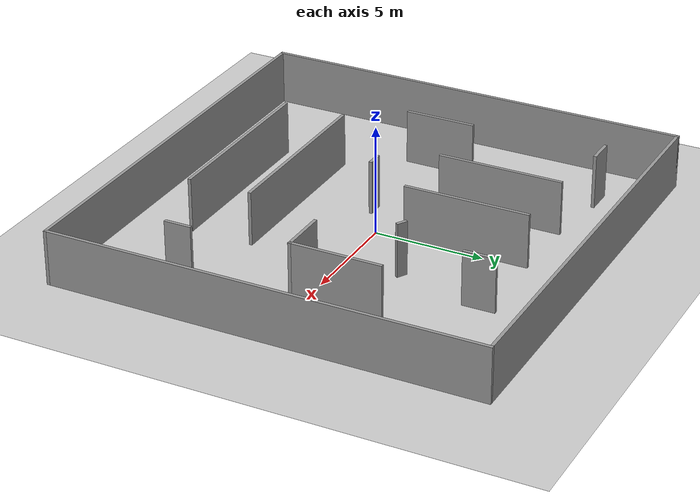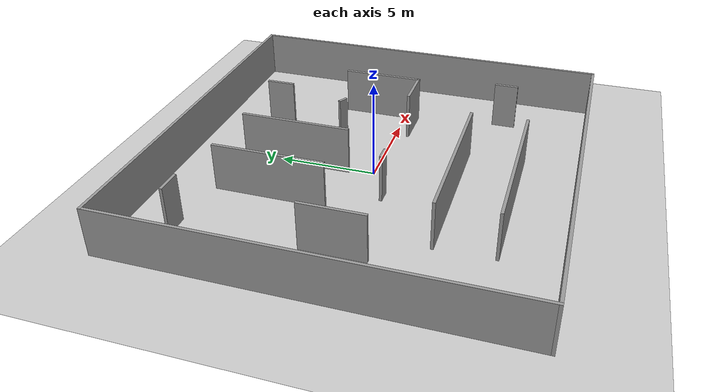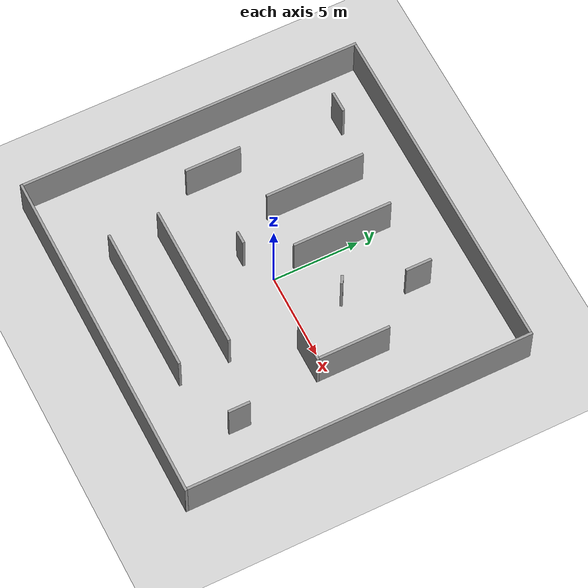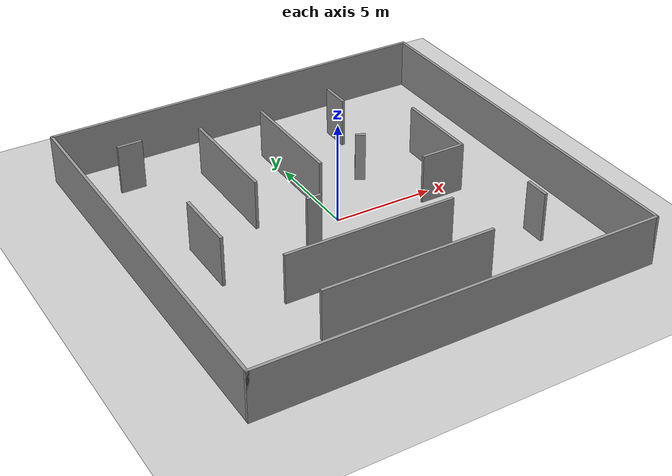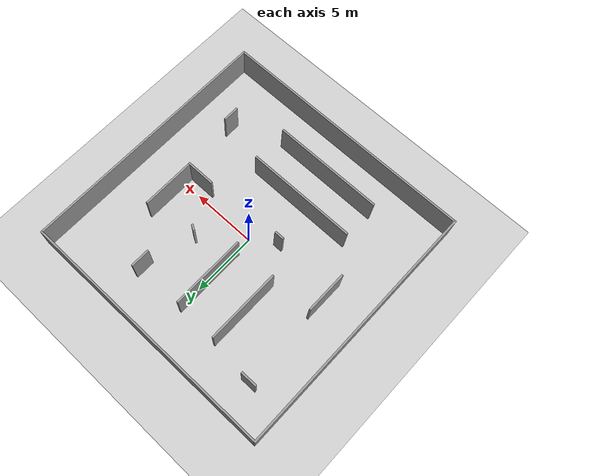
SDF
<sdf version="1.7">
 <world name="default">
  <light name="sun" type="directional">
   <pose>0 0 10 0 -0 0</pose>
   <diffuse>0.8 0.8 0.8 1</diffuse>
   <specular>0.2 0.2 0.2 1</specular>
   <attenuation>
    <range>1000</range>
    <constant>0.9</constant>
    <linear>0.01</linear>
    <quadratic>0.001</quadratic>
   </attenuation>
   <direction>-0.5 0.1 -0.9</direction>
   <spot><inner_angle>0</inner_angle><outer_angle>0</outer_angle><falloff>0</falloff></spot>
  </light>
  <model name="ground_plane">
   <static>1</static>
   <link name="link">
    <collision name="collision">
     <geometry><plane><normal>0 0 1</normal><size>100 100</size></plane></geometry>
     <surface><friction><ode><mu>100</mu><mu2>50</mu2></ode></friction></surface>
    </collision>
    <visual name="visual">
     <cast_shadows>0</cast_shadows>
     <geometry><plane><normal>0 0 1</normal><size>100 100</size></plane></geometry>
     <material>
      <script><uri>file://media/materials/scripts/gazebo.material</uri><name>Gazebo/Grey</name></script>
     </material>
    </visual>
   </link>
  </model>
  <gravity>0 0 -9.8</gravity>
  <magnetic_field>6e-06 2.3e-05 -4.2e-05</magnetic_field>
  <atmosphere type="adiabatic"/>
  <physics type="ode">
   <max_step_size>0.001</max_step_size>
   <real_time_factor>1</real_time_factor>
   <real_time_update_rate>1000</real_time_update_rate>
  </physics>
  <scene><ambient>0.4 0.4 0.4 1</ambient><background>0.7 0.7 0.7 1</background><shadows>1</shadows></scene>
  <spherical_coordinates>
   <surface_model>EARTH_WGS84</surface_model>
   <latitude_deg>0</latitude_deg>
   <longitude_deg>0</longitude_deg>
   <elevation>0</elevation>
   <heading_deg>0</heading_deg>
  </spherical_coordinates>
  <model name="test_map2">
   <pose>0.066226 -0.057714 0 0 -0 0</pose>
   <link name="Wall_0">
    <collision name="Wall_0_Collision">
     <geometry><box><size>20 0.15 2.5</size></box></geometry>
     <pose>0 0 1.25 0 -0 0</pose>
    </collision>
    <visual name="Wall_0_Visual">
     <pose>0 0 1.25 0 -0 0</pose>
     <geometry><box><size>20 0.15 2.5</size></box></geometry>
     <material>
      <script><uri>file://media/materials/scripts/gazebo.material</uri><name>Gazebo/Grey</name></script>
      <ambient>1 1 1 1</ambient>
     </material>
     <meta><layer>0</layer></meta>
    </visual>
    <pose>0 -9.925 0 0 -0 0</pose>
   </link>
   <link name="Wall_10">
    <collision name="Wall_10_Collision">
     <geometry><box><size>5.75 0.15 2.5</size></box></geometry>
     <pose>0 0 1.25 0 -0 0</pose>
    </collision>
    <visual name="Wall_10_Visual">
     <pose>0 0 1.25 0 -0 0</pose>
     <geometry><box><size>5.75 0.15 2.5</size></box></geometry>
     <material>
      <script><uri>file://media/materials/scripts/gazebo.material</uri><name>Gazebo/Grey</name></script>
      <ambient>1 1 1 1</ambient>
     </material>
     <meta><layer>0</layer></meta>
    </visual>
    <pose>-0.241427 4.18617 0 0 -0 -1.5708</pose>
   </link>
   <link name="Wall_12">
    <collision name="Wall_12_Collision">
     <geometry><box><size>8.5 0.15 2.5</size></box></geometry>
     <pose>0 0 1.25 0 -0 0</pose>
    </collision>
    <visual name="Wall_12_Visual">
     <pose>0 0 1.25 0 -0 0</pose>
     <geometry><box><size>8.5 0.15 2.5</size></box></geometry>
     <material>
      <script><uri>file://media/materials/scripts/gazebo.material</uri><name>Gazebo/Grey</name></script>
      <ambient>1 1 1 1</ambient>
     </material>
     <meta><layer>0</layer></meta>
    </visual>
    <pose>-0.956275 -4.20067 0 0 -0 0</pose>
   </link>
   <link name="Wall_14">
    <collision name="Wall_14_Collision">
     <geometry><box><size>8.5 0.15 2.5</size></box></geometry>
     <pose>0 0 1.25 0 -0 0</pose>
    </collision>
    <visual name="Wall_14_Visual">
     <pose>0 0 1.25 0 -0 0</pose>
     <geometry><box><size>8.5 0.15 2.5</size></box></geometry>
     <material>
      <script><uri>file://media/materials/scripts/gazebo.material</uri><name>Gazebo/Grey</name></script>
      <ambient>1 1 1 1</ambient>
     </material>
     <meta><layer>0</layer></meta>
    </visual>
    <pose>-0.885917 -7.08533 0 0 -0 0</pose>
   </link>
   <link name="Wall_16">
    <collision name="Wall_16_Collision">
     <geometry><box><size>4.25 0.15 2.5</size></box></geometry>
     <pose>0 0 1.25 0 -0 0</pose>
    </collision>
    <visual name="Wall_16_Visual">
     <pose>0 0 1.25 0 -0 0</pose>
     <geometry><box><size>4.25 0.15 2.5</size></box></geometry>
     <material>
      <script><uri>file://media/materials/scripts/gazebo.material</uri><name>Gazebo/Grey</name></script>
      <ambient>1 1 1 1</ambient>
     </material>
     <meta><layer>0</layer></meta>
    </visual>
    <pose>6.30182 1.45348 0 0 -0 -1.5708</pose>
   </link>
   <link name="Wall_17">
    <collision name="Wall_17_Collision">
     <geometry><box><size>2.25 0.15 2.5</size></box></geometry>
     <pose>0 0 1.25 0 -0 0</pose>
    </collision>
    <visual name="Wall_17_Visual">
     <pose>0 0 1.25 0 -0 0</pose>
     <geometry><box><size>2.25 0.15 2.5</size></box></geometry>
     <material>
      <script><uri>file://media/materials/scripts/gazebo.material</uri><name>Gazebo/Grey</name></script>
      <ambient>1 1 1 1</ambient>
     </material>
     <meta><layer>0</layer></meta>
    </visual>
    <pose>5.25182 -0.596525 0 0 -0 3.14159</pose>
   </link>
   <link name="Wall_2">
    <collision name="Wall_2_Collision">
     <geometry><box><size>20 0.15 2.5</size></box></geometry>
     <pose>0 0 1.25 0 -0 0</pose>
    </collision>
    <visual name="Wall_2_Visual">
     <pose>0 0 1.25 0 -0 0</pose>
     <geometry><box><size>20 0.15 2.5</size></box></geometry>
     <material>
      <script><uri>file://media/materials/scripts/gazebo.material</uri><name>Gazebo/Grey</name></script>
      <ambient>1 1 1 1</ambient>
     </material>
     <meta><layer>0</layer></meta>
    </visual>
    <pose>-9.925 0 0 0 -0 1.5708</pose>
   </link>
   <link name="Wall_20">
    <collision name="Wall_20_Collision">
     <geometry><box><size>3.25 0.15 2.5</size></box></geometry>
     <pose>0 0 1.25 0 -0 0</pose>
    </collision>
    <visual name="Wall_20_Visual">
     <pose>0 0 1.25 0 -0 0</pose>
     <geometry><box><size>3.25 0.15 2.5</size></box></geometry>
     <material>
      <script><uri>file://media/materials/scripts/gazebo.material</uri><name>Gazebo/Grey</name></script>
      <ambient>1 1 1 1</ambient>
     </material>
     <meta><layer>0</layer></meta>
    </visual>
    <pose>-6.85503 -0.157251 0 0 -0 -1.5708</pose>
   </link>
   <link name="Wall_24">
    <collision name="Wall_24_Collision">
     <geometry><box><size>1.5 0.15 2.5</size></box></geometry>
     <pose>0 0 1.25 0 -0 0</pose>
    </collision>
    <visual name="Wall_24_Visual">
     <pose>0 0 1.25 0 -0 0</pose>
     <geometry><box><size>1.5 0.15 2.5</size></box></geometry>
     <material>
      <script><uri>file://media/materials/scripts/gazebo.material</uri><name>Gazebo/Grey</name></script>
      <ambient>1 1 1 1</ambient>
     </material>
     <meta><layer>0</layer></meta>
    </visual>
    <pose>3.73377 6.62778 0 0 -0 -1.5708</pose>
   </link>
   <link name="Wall_26">
    <collision name="Wall_26_Collision">
     <geometry><box><size>1.25 0.15 2.5</size></box></geometry>
     <pose>0 0 1.25 0 -0 0</pose>
    </collision>
    <visual name="Wall_26_Visual">
     <pose>0 0 1.25 0 -0 0</pose>
     <geometry><box><size>1.25 0.15 2.5</size></box></geometry>
     <material>
      <script><uri>file://media/materials/scripts/gazebo.material</uri><name>Gazebo/Grey</name></script>
      <ambient>1 1 1 1</ambient>
     </material>
     <meta><layer>0</layer></meta>
    </visual>
    <pose>-7.04379 7.4435 0 0 -0 0</pose>
   </link>
   <link name="Wall_28">
    <collision name="Wall_28_Collision">
     <geometry><box><size>1.25 0.15 2.5</size></box></geometry>
     <pose>0 0 1.25 0 -0 0</pose>
    </collision>
    <visual name="Wall_28_Visual">
     <pose>0 0 1.25 0 -0 0</pose>
     <geometry><box><size>1.25 0.15 2.5</size></box></geometry>
     <material>
      <script><uri>file://media/materials/scripts/gazebo.material</uri><name>Gazebo/Grey</name></script>
      <ambient>1 1 1 1</ambient>
     </material>
     <meta><layer>0</layer></meta>
    </visual>
    <pose>6.97022 -5.45425 0 0 -0 -1.5708</pose>
   </link>
   <link name="Wall_3">
    <collision name="Wall_3_Collision">
     <geometry><box><size>20 0.15 2.5</size></box></geometry>
     <pose>0 0 1.25 0 -0 0</pose>
    </collision>
    <visual name="Wall_3_Visual">
     <pose>0 0 1.25 0 -0 0</pose>
     <geometry><box><size>20 0.15 2.5</size></box></geometry>
     <material>
      <script><uri>file://media/materials/scripts/gazebo.material</uri><name>Gazebo/Grey</name></script>
      <ambient>1 1 1 1</ambient>
     </material>
     <meta><layer>0</layer></meta>
    </visual>
    <pose>0 9.925 0 0 -0 0</pose>
   </link>
   <link name="Wall_30">
    <collision name="Wall_30_Collision">
     <geometry><box><size>0.75 0.15 2.5</size></box></geometry>
     <pose>0 0 1.25 0 -0 0</pose>
    </collision>
    <visual name="Wall_30_Visual">
     <pose>0 0 1.25 0 -0 0</pose>
     <geometry><box><size>0.75 0.15 2.5</size></box></geometry>
     <material>
      <script><uri>file://media/materials/scripts/gazebo.material</uri><name>Gazebo/Grey</name></script>
      <ambient>1 1 1 1</ambient>
     </material>
     <meta><layer>0</layer></meta>
    </visual>
    <pose>-1.91519 -0.964228 0 0 -0 0</pose>
   </link>
   <link name="Wall_33">
    <collision name="Wall_33_Collision">
     <geometry><box><size>0.5 0.15 2.5</size></box></geometry>
     <pose>0 0 1.25 0 -0 0</pose>
    </collision>
    <visual name="Wall_33_Visual">
     <pose>0 0 1.25 0 -0 0</pose>
     <geometry><box><size>0.5 0.15 2.5</size></box></geometry>
     <material>
      <script><uri>file://media/materials/scripts/gazebo.material</uri><name>Gazebo/Grey</name></script>
      <ambient>1 1 1 1</ambient>
     </material>
     <meta><layer>0</layer></meta>
    </visual>
    <pose>2.72443 2.64204 0 0 -0 -0.523599</pose>
   </link>
   <link name="Wall_4">
    <collision name="Wall_4_Collision">
     <geometry><box><size>20 0.15 2.5</size></box></geometry>
     <pose>0 0 1.25 0 -0 0</pose>
    </collision>
    <visual name="Wall_4_Visual">
     <pose>0 0 1.25 0 -0 0</pose>
     <geometry><box><size>20 0.15 2.5</size></box></geometry>
     <material>
      <script><uri>file://media/materials/scripts/gazebo.material</uri><name>Gazebo/Grey</name></script>
      <ambient>1 1 1 1</ambient>
     </material>
     <meta><layer>0</layer></meta>
    </visual>
    <pose>9.925 0 0 0 -0 -1.5708</pose>
   </link>
   <link name="Wall_6">
    <collision name="Wall_6_Collision">
     <geometry><box><size>5.75 0.15 2.5</size></box></geometry>
     <pose>0 0 1.25 0 -0 0</pose>
    </collision>
    <visual name="Wall_6_Visual">
     <pose>0 0 1.25 0 -0 0</pose>
     <geometry><box><size>5.75 0.15 2.5</size></box></geometry>
     <material>
      <script><uri>file://media/materials/scripts/gazebo.material</uri><name>Gazebo/Grey</name></script>
      <ambient>1 1 1 1</ambient>
     </material>
     <meta><layer>0</layer></meta>
    </visual>
    <pose>-3.54823 4.25653 0 0 -0 -1.5708</pose>
   </link>
   <static>1</static>
  </model>
 </world>
</sdf>
